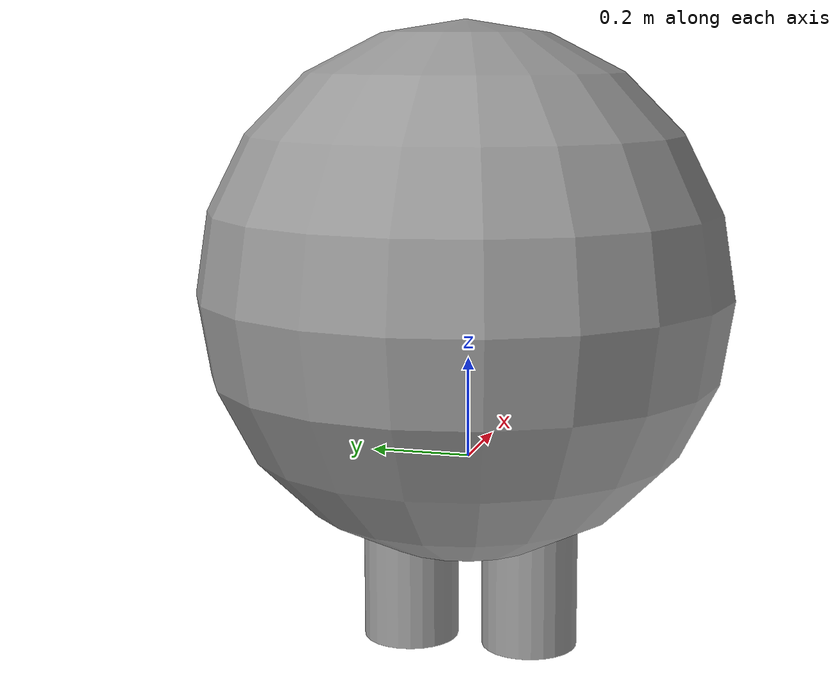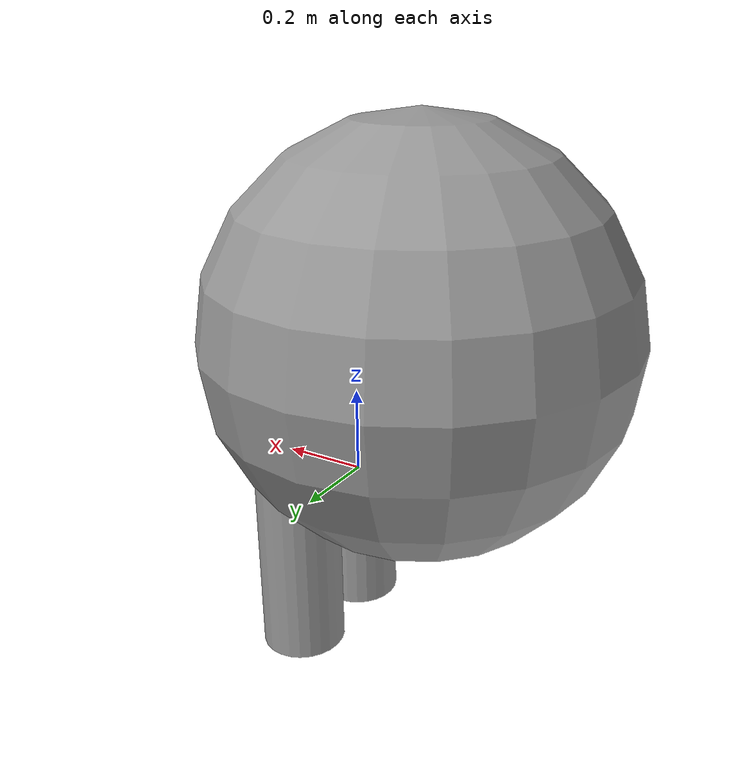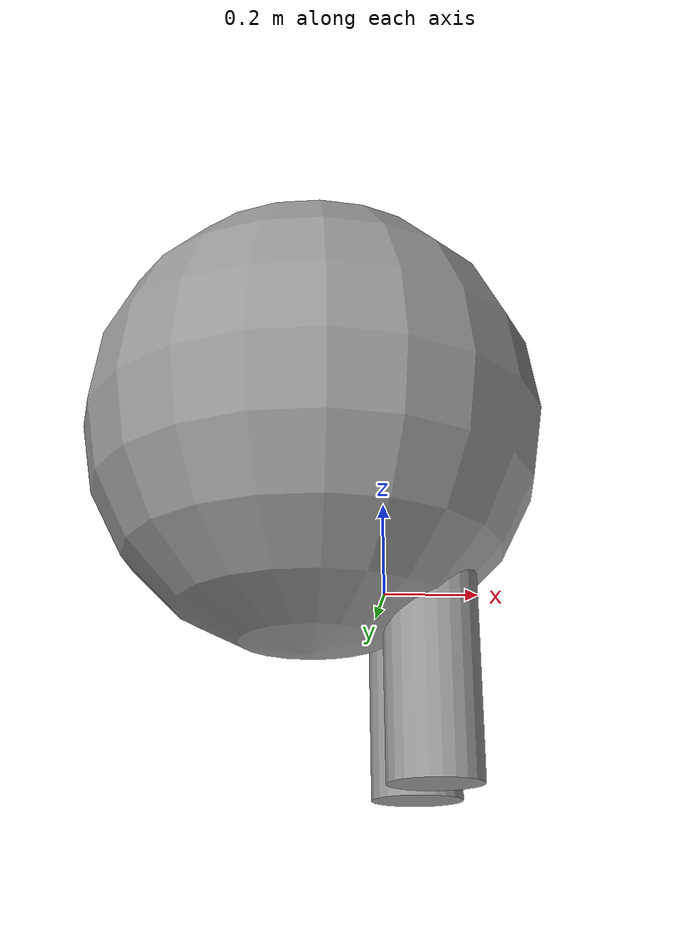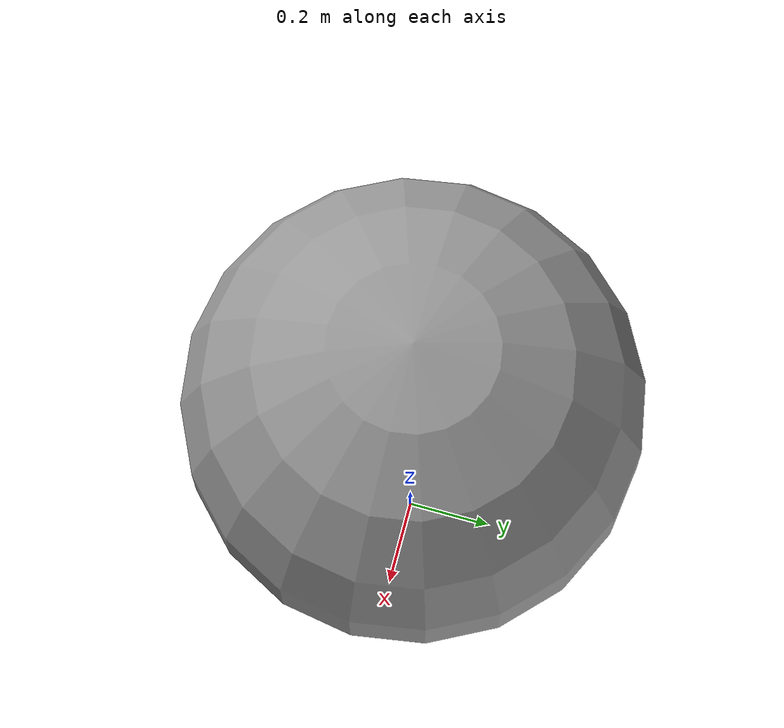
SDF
<?xml version='1.0'?>
<sdf version='1.6'>
  <model name='humaball'>
    <link name='link_0'>
      <pose frame=''>0.08022 -0.108763 -0.179417 0 -0 0</pose>
      <inertial>
        <mass>0.0180739</mass>
        <inertia>
          <ixx>0.00037297</ixx>
          <ixy>0</ixy>
          <ixz>0</ixz>
          <iyy>0.00037297</iyy>
          <iyz>0</iyz>
          <izz>8.726e-05</izz>
        </inertia>
        <pose frame=''>0 0 0 0 -0 0</pose>
      </inertial>
      <gravity>1</gravity>
      <self_collide>0</self_collide>
      <kinematic>0</kinematic>
      <visual name='visual'>
        <pose frame=''>0 0 0 0 -0 0</pose>
        <geometry>
          <cylinder>
            <radius>0.0982653</radius>
            <length>0.467615</length>
          </cylinder>
        </geometry>
        <material>
          <lighting>1</lighting>
          <script>
            <uri>file://media/materials/scripts/gazebo.material</uri>
            <name>Gazebo/Grey</name>
          </script>
          <shader type='pixel'>
            <normal_map>__default__</normal_map>
          </shader>
          <ambient>0.3 0.3 0.3 1</ambient>
          <diffuse>0.7 0.7 0.7 1</diffuse>
          <specular>0.01 0.01 0.01 1</specular>
          <emissive>0 0 0 1</emissive>
        </material>
        <transparency>0</transparency>
        <cast_shadows>1</cast_shadows>
      </visual>
      <collision name='collision'>
        <laser_retro>0</laser_retro>
        <max_contacts>10</max_contacts>
        <pose frame=''>0 0 0 0 -0 0</pose>
        <geometry>
          <cylinder>
            <radius>0.098265</radius>
            <length>0.467615</length>
          </cylinder>
        </geometry>
        <surface>
          <friction>
            <ode>
              <mu>1</mu>
              <mu2>1</mu2>
              <fdir1>0 0 0</fdir1>
              <slip1>0</slip1>
              <slip2>0</slip2>
            </ode>
            <torsional>
              <coefficient>1</coefficient>
              <patch_radius>0</patch_radius>
              <surface_radius>0</surface_radius>
              <use_patch_radius>1</use_patch_radius>
              <ode>
                <slip>0</slip>
              </ode>
            </torsional>
          </friction>
          <bounce>
            <restitution_coefficient>0</restitution_coefficient>
            <threshold>1e+06</threshold>
          </bounce>
          <contact>
            <collide_without_contact>0</collide_without_contact>
            <collide_without_contact_bitmask>1</collide_without_contact_bitmask>
            <collide_bitmask>1</collide_bitmask>
            <ode>
              <soft_cfm>0</soft_cfm>
              <soft_erp>0.2</soft_erp>
              <kp>1e+13</kp>
              <kd>1</kd>
              <max_vel>0.01</max_vel>
              <min_depth>0</min_depth>
            </ode>
            <bullet>
              <split_impulse>1</split_impulse>
              <split_impulse_penetration_threshold>-0.01</split_impulse_penetration_threshold>
              <soft_cfm>0</soft_cfm>
              <soft_erp>0.2</soft_erp>
              <kp>1e+13</kp>
              <kd>1</kd>
            </bullet>
          </contact>
        </surface>
      </collision>
    </link>
    <link name='link_0_clone'>
      <pose frame=''>0.076453 0.143831 -0.179417 0 -0 0</pose>
      <inertial>
        <mass>0.0180739</mass>
        <inertia>
          <ixx>0.000372973</ixx>
          <ixy>0</ixy>
          <ixz>0</ixz>
          <iyy>0.000372973</iyy>
          <iyz>0</iyz>
          <izz>8.72612e-05</izz>
        </inertia>
        <pose frame=''>0 0 0 0 -0 0</pose>
      </inertial>
      <visual name='visual'>
        <pose frame=''>0 0 0 0 -0 0</pose>
        <geometry>
          <cylinder>
            <radius>0.0982653</radius>
            <length>0.467615</length>
          </cylinder>
        </geometry>
        <material>
          <lighting>1</lighting>
          <script>
            <uri>file://media/materials/scripts/gazebo.material</uri>
            <name>Gazebo/Grey</name>
          </script>
          <shader type='pixel'/>
          <ambient>0.3 0.3 0.3 1</ambient>
          <diffuse>0.7 0.7 0.7 1</diffuse>
          <specular>0.01 0.01 0.01 1</specular>
          <emissive>0 0 0 1</emissive>
        </material>
        <transparency>0</transparency>
        <cast_shadows>1</cast_shadows>
      </visual>
      <collision name='collision'>
        <laser_retro>0</laser_retro>
        <max_contacts>10</max_contacts>
        <pose frame=''>0 0 0 0 -0 0</pose>
        <geometry>
          <cylinder>
            <radius>0.098265</radius>
            <length>0.467615</length>
          </cylinder>
        </geometry>
        <surface>
          <friction>
            <ode>
              <mu>1</mu>
              <mu2>1</mu2>
              <fdir1>0 0 0</fdir1>
              <slip1>0</slip1>
              <slip2>0</slip2>
            </ode>
            <torsional>
              <coefficient>1</coefficient>
              <patch_radius>0</patch_radius>
              <surface_radius>0</surface_radius>
              <use_patch_radius>1</use_patch_radius>
              <ode>
                <slip>0</slip>
              </ode>
            </torsional>
          </friction>
          <bounce>
            <restitution_coefficient>0</restitution_coefficient>
            <threshold>1e+06</threshold>
          </bounce>
          <contact>
            <collide_without_contact>0</collide_without_contact>
            <collide_without_contact_bitmask>1</collide_without_contact_bitmask>
            <collide_bitmask>1</collide_bitmask>
            <ode>
              <soft_cfm>0</soft_cfm>
              <soft_erp>0.2</soft_erp>
              <kp>1e+13</kp>
              <kd>1</kd>
              <max_vel>0.01</max_vel>
              <min_depth>0</min_depth>
            </ode>
            <bullet>
              <split_impulse>1</split_impulse>
              <split_impulse_penetration_threshold>-0.01</split_impulse_penetration_threshold>
              <soft_cfm>0</soft_cfm>
              <soft_erp>0.2</soft_erp>
              <kp>1e+13</kp>
              <kd>1</kd>
            </bullet>
          </contact>
        </surface>
      </collision>
    </link>
    <link name='link_1'>
      <pose frame=''>-0.156668 -0.035071 0.35883 0 -0 0</pose>
      <inertial>
        <mass>1</mass>
        <inertia>
          <ixx>0.1</ixx>
          <ixy>0</ixy>
          <ixz>0</ixz>
          <iyy>0.1</iyy>
          <iyz>0</iyz>
          <izz>0.1</izz>
        </inertia>
      </inertial>
      <visual name='visual'>
        <pose frame=''>0 0 0 0 -0 0</pose>
        <geometry>
          <sphere>
            <radius>0.5</radius>
          </sphere>
        </geometry>
        <material>
          <lighting>1</lighting>
          <script>
            <uri>file://media/materials/scripts/gazebo.material</uri>
            <name>Gazebo/Grey</name>
          </script>
          <shader type='pixel'/>
          <ambient>0.3 0.3 0.3 1</ambient>
          <diffuse>0.7 0.7 0.7 1</diffuse>
          <specular>0.01 0.01 0.01 1</specular>
          <emissive>0 0 0 1</emissive>
        </material>
        <transparency>0</transparency>
        <cast_shadows>1</cast_shadows>
      </visual>
      <collision name='collision'>
        <laser_retro>0</laser_retro>
        <max_contacts>10</max_contacts>
        <pose frame=''>0 0 0 0 -0 0</pose>
        <geometry>
          <sphere>
            <radius>0.5</radius>
          </sphere>
        </geometry>
        <surface>
          <friction>
            <ode>
              <mu>1</mu>
              <mu2>1</mu2>
              <fdir1>0 0 0</fdir1>
              <slip1>0</slip1>
              <slip2>0</slip2>
            </ode>
            <torsional>
              <coefficient>1</coefficient>
              <patch_radius>0</patch_radius>
              <surface_radius>0</surface_radius>
              <use_patch_radius>1</use_patch_radius>
              <ode>
                <slip>0</slip>
              </ode>
            </torsional>
          </friction>
          <bounce>
            <restitution_coefficient>0</restitution_coefficient>
            <threshold>1e+06</threshold>
          </bounce>
          <contact>
            <collide_without_contact>0</collide_without_contact>
            <collide_without_contact_bitmask>1</collide_without_contact_bitmask>
            <collide_bitmask>1</collide_bitmask>
            <ode>
              <soft_cfm>0</soft_cfm>
              <soft_erp>0.2</soft_erp>
              <kp>1e+13</kp>
              <kd>1</kd>
              <max_vel>0.01</max_vel>
              <min_depth>0</min_depth>
            </ode>
            <bullet>
              <split_impulse>1</split_impulse>
              <split_impulse_penetration_threshold>-0.01</split_impulse_penetration_threshold>
              <soft_cfm>0</soft_cfm>
              <soft_erp>0.2</soft_erp>
              <kp>1e+13</kp>
              <kd>1</kd>
            </bullet>
          </contact>
        </surface>
      </collision>
    </link>
    <joint name='link_1_JOINT_1' type='fixed'>
      <parent>link_1</parent>
      <child>link_0_clone</child>
      <pose frame=''>0 0 0 0 -0 0</pose>
      <physics>
        <ode>
          <limit>
            <cfm>0</cfm>
            <erp>0.2</erp>
          </limit>
          <suspension>
            <cfm>0</cfm>
            <erp>0.2</erp>
          </suspension>
        </ode>
      </physics>
    </joint>
    <joint name='link_1_JOINT_2' type='fixed'>
      <parent>link_1</parent>
      <child>link_0</child>
      <pose frame=''>0 0 0 0 -0 0</pose>
      <physics>
        <ode>
          <limit>
            <cfm>0</cfm>
            <erp>0.2</erp>
          </limit>
          <suspension>
            <cfm>0</cfm>
            <erp>0.2</erp>
          </suspension>
        </ode>
      </physics>
    </joint>
    <static>0</static>
    <allow_auto_disable>1</allow_auto_disable>
  </model>
</sdf>
